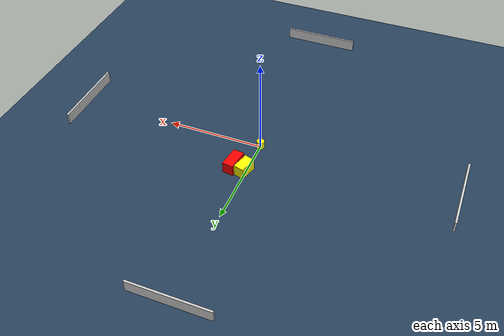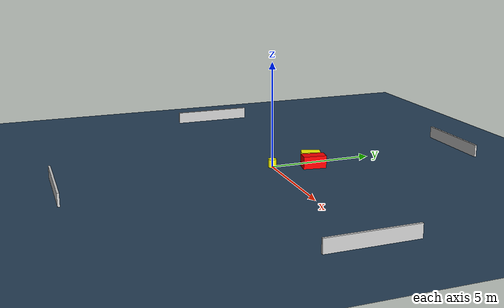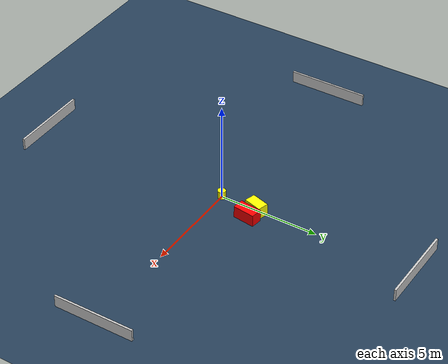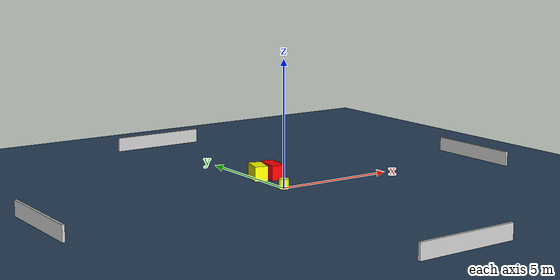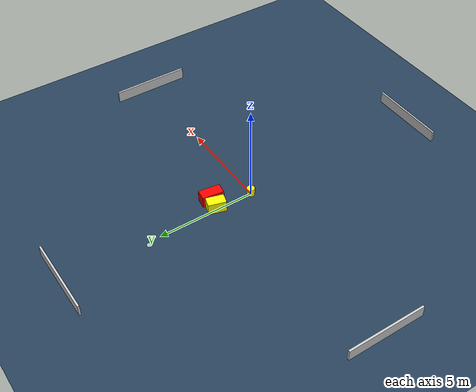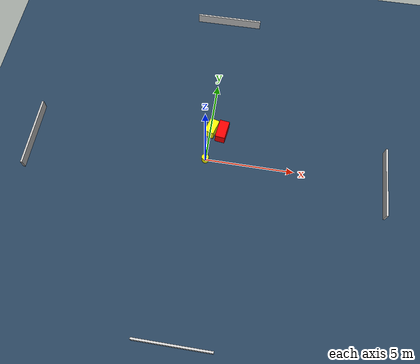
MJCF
<?xml version="1.0" ?>
<mujoco model="generated_environment">
  <option timestep="0.01" integrator="RK4" cone="elliptic"/>
  <default>
    <geom density="1"/>
  </default>
  <asset>
    <texture builtin="gradient" height="3072" name="skybox" rgb1="0.3 0.5 0.7" rgb2="0 0 0" type="skybox" width="512"/>
    <texture builtin="checker" height="300" name="groundplane" rgb1="0.2 0.3 0.4" rgb2="0.1 0.2 0.3" type="2d" width="300"/>
    <material name="groundplane" reflectance="0.2" texrepeat="5 5" texture="groundplane"/>
  </asset>
  <worldbody>
    <light dir="0 0 -1" directional="true" pos="0 0 1.5"/>
    <geom condim="3" friction="0.5 0.005 0.001" material="groundplane" name="floor" pos="0 0 0" size="0 0 0.05" type="plane"/>
    <body name="walls">
      <geom name="wall_1" condim="4" pos="-10.0 0.0 0.3" rgba="0.800000011920929 0.800000011920929 0.800000011920929 1.0" size="0.05 2.0 0.3" type="box"/>
      <geom name="wall_2" condim="4" pos="10.0 0.0 0.3" rgba="0.800000011920929 0.800000011920929 0.800000011920929 1.0" size="0.05 2.0 0.3" type="box"/>
      <geom name="wall_3" condim="4" pos="0.0 -10.0 0.3" rgba="0.800000011920929 0.800000011920929 0.800000011920929 1.0" size="2.0 0.05 0.3" type="box"/>
      <geom name="wall_4" condim="4" pos="0.0 10.0 0.3" rgba="0.800000011920929 0.800000011920929 0.800000011920929 1.0" size="2.0 0.05 0.3" type="box"/>
    </body>
    <body name="robot">
      <joint name="joint_x" type="slide" pos="0 0 0" axis="1 0 0"/>
      <joint name="joint_y" type="slide" pos="0 0 0" axis="0 1 0"/>
      <geom name="robot" type="cylinder" pos="0.0 0.0 0.2" size="0.2 0.2 0.0" mass="5.0" friction="1.0 0.005 0.0001" condim="4" rgba="1.0 1.0 0.0 1.0"/>
    </body>
    <body name="obstacle_1_movable">
      <geom name="obstacle_1_movable" condim="4" pos="0.08639312784018567 1.9277993888307305 0.3" euler="0 0 73.89696450773494" friction="0.0 0.005 0.001" rgba="1.0 1.0 0.0 1.0" size="0.4552487187375262 0.27020836588920655 0.3" type="box" mass="0.1"/>
      <joint type="free"/>
    </body>
    <body name="obstacle_2_static">
      <geom name="obstacle_2_static" condim="4" pos="0.7026729891997114 1.8139982823982364 0.3" euler="0 0 262.277480233254" friction="0.0 0.005 0.001" rgba="1.0 0.0 0.0 1.0" size="0.5497745998350326 0.279691935958079 0.3" type="box"/>
    </body>
  </worldbody>
  <actuator>
    <motor name="actuator_x" joint="joint_x" gear="1" ctrlrange="-1 1"/>
    <motor name="actuator_y" joint="joint_y" gear="1" ctrlrange="-1 1"/>
  </actuator>
</mujoco>
